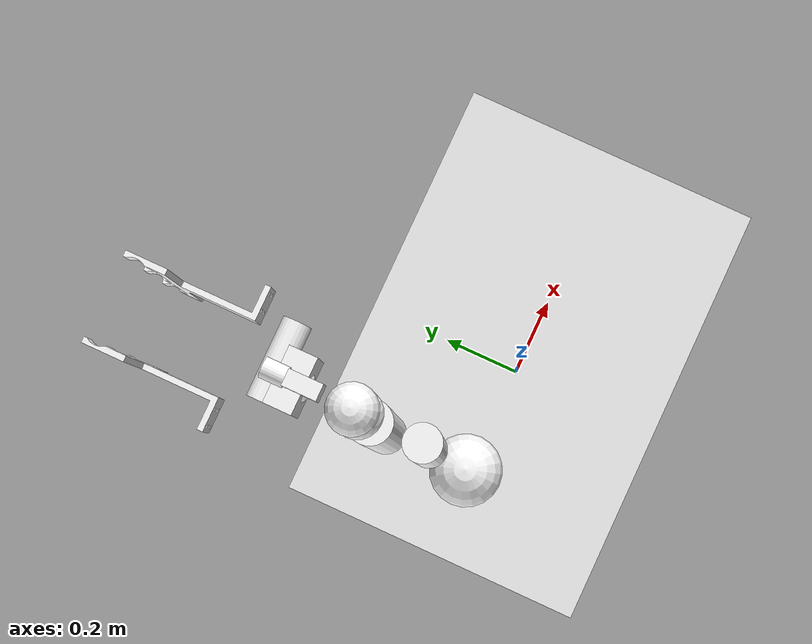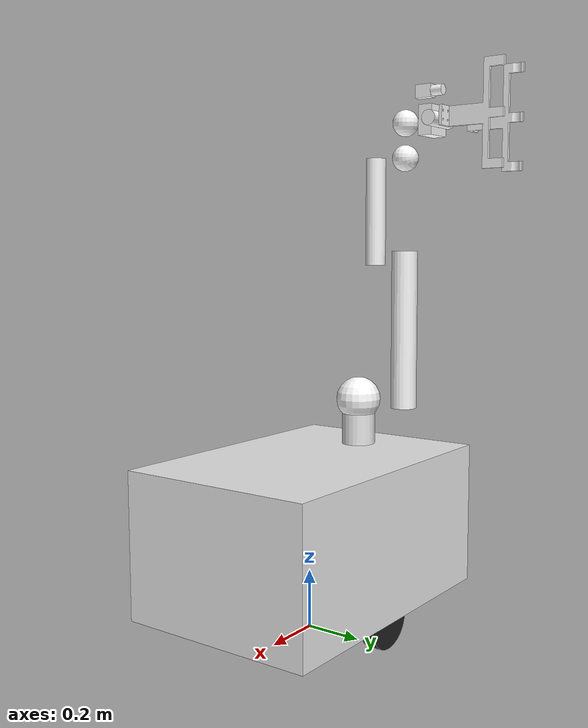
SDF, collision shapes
<sdf version='1.12'>
  <model name='seer_aubo_composite'>
    <link name='base_footprint'>
      <inertial>
        <pose>-0.0067535289950691026 -3.6025001736231799e-05 0.15985842516841439 0 0 0</pose>
        <mass>115.19199999999999</mass>
        <inertia>
          <ixx>3.7624900256016338</ixx>
          <ixy>-0.058218476231116492</ixy>
          <ixz>0.35718445016870021</ixz>
          <iyy>7.7892711615759591</iyy>
          <iyz>0.0019862839370155148</iyz>
          <izz>8.7376881246157811</izz>
        </inertia>
      </inertial>
      <collision name='base_footprint_fixed_joint_lump__base_link_collision'>
        <pose>0 0 0.34999999999999998 0 0 0</pose>
        <geometry>
          <box>
            <size>1 0.69999999999999996 0.5</size>
          </box>
        </geometry>
        <surface>
          <contact>
            <ode/>
          </contact>
          <friction>
            <ode/>
          </friction>
        </surface>
      </collision>
      <collision name='base_footprint_fixed_joint_lump__aubo_base_link_collision_1'>
        <pose>-0.29999999999999999 0 0.68149999999999999 0 0 3.1415926535897931</pose>
        <geometry>
          <cylinder>
            <length>0.16300000000000001</length>
            <radius>0.059999999999999998</radius>
          </cylinder>
        </geometry>
      </collision>
      <collision name='base_footprint_fixed_joint_lump__back_lidar_link_collision_2'>
        <pose>-0.38 -0.25 0.20000000000000001 0 0 0</pose>
        <geometry>
          <cylinder>
            <length>0.080000000000000002</length>
            <radius>0.050000000000000003</radius>
          </cylinder>
        </geometry>
        <surface>
          <contact>
            <ode/>
          </contact>
          <friction>
            <ode/>
          </friction>
        </surface>
      </collision>
      <collision name='base_footprint_fixed_joint_lump__front_caster_collision_3'>
        <pose>0.29999999999999999 0 0.095000000000000001 0 0 0</pose>
        <geometry>
          <sphere>
            <radius>0.095000000000000001</radius>
          </sphere>
        </geometry>
        <surface>
          <contact>
            <ode/>
          </contact>
          <friction>
            <ode>
              <mu>0</mu>
              <mu2>0</mu2>
            </ode>
          </friction>
        </surface>
      </collision>
      <collision name='base_footprint_fixed_joint_lump__front_lidar_link_collision_4'>
        <pose>0.38 0.25 0.20000000000000001 0 0 0</pose>
        <geometry>
          <cylinder>
            <length>0.080000000000000002</length>
            <radius>0.050000000000000003</radius>
          </cylinder>
        </geometry>
        <surface>
          <contact>
            <ode/>
          </contact>
          <friction>
            <ode/>
          </friction>
        </surface>
      </collision>
      <collision name='base_footprint_fixed_joint_lump__rear_caster_collision_5'>
        <pose>-0.29999999999999999 0 0.095000000000000001 0 0 0</pose>
        <geometry>
          <sphere>
            <radius>0.095000000000000001</radius>
          </sphere>
        </geometry>
        <surface>
          <contact>
            <ode/>
          </contact>
          <friction>
            <ode>
              <mu>0</mu>
              <mu2>0</mu2>
            </ode>
          </friction>
        </surface>
      </collision>
      <visual name='base_footprint_fixed_joint_lump__base_link_visual'>
        <pose>0 0 0.26000000000000001 0 0 3.1415926535897931</pose>
        <geometry>
          <mesh>
            <scale>0.10000000000000001 0.10000000000000001 0.10000000000000001</scale>
            <uri>model://seer_description/meshes/robot_body.stl</uri>
          </mesh>
        </geometry>
        <material>
          <script>
            <name>Gazebo/White</name>
            <uri>file://media/materials/scripts/gazebo.material</uri>
          </script>
          <diffuse>1 0.712499976 1 1</diffuse>
          <ambient>1 0.712499976 1 1</ambient>
        </material>
      </visual>
      <visual name='base_footprint_fixed_joint_lump__aubo_base_link_visual_1'>
        <pose>-0.29999999999999999 0 0.59999999999999998 0 0 3.1415926535897931</pose>
        <geometry>
          <mesh>
            <scale>1 1 1</scale>
            <uri>model://seer_description/meshes/aubo_i16H/visual/link0.DAE</uri>
          </mesh>
        </geometry>
        <material>
          <diffuse>1 1 1 1</diffuse>
          <ambient>1 1 1 1</ambient>
        </material>
      </visual>
      <visual name='base_footprint_fixed_joint_lump__back_lidar_link_visual_2'>
        <pose>-0.38 -0.25 0.20000000000000001 0 0 0</pose>
        <geometry>
          <mesh>
            <scale>0.10000000000000001 0.10000000000000001 0.10000000000000001</scale>
            <uri>model://seer_description/meshes/lidar.stl</uri>
          </mesh>
        </geometry>
        <material>
          <diffuse>0.625 0.625 0.625 1</diffuse>
          <ambient>0.625 0.625 0.625 1</ambient>
        </material>
      </visual>
      <visual name='base_footprint_fixed_joint_lump__front_lidar_link_visual_3'>
        <pose>0.38 0.25 0.20000000000000001 0 0 0</pose>
        <geometry>
          <mesh>
            <scale>0.10000000000000001 0.10000000000000001 0.10000000000000001</scale>
            <uri>model://seer_description/meshes/lidar.stl</uri>
          </mesh>
        </geometry>
        <material>
          <diffuse>0.625 0.625 0.625 1</diffuse>
          <ambient>0.625 0.625 0.625 1</ambient>
        </material>
      </visual>
      <sensor name='back_lidar_sensor' type='gpu_lidar'>
        <topic>/lidar_back</topic>
        <update_rate>10</update_rate>
        <ray>
          <scan>
            <horizontal>
              <samples>360</samples>
              <resolution>1</resolution>
              <min_angle>-3.1415899999999999</min_angle>
              <max_angle>3.1415899999999999</max_angle>
            </horizontal>
            <vertical>
              <samples>16</samples>
              <resolution>1</resolution>
              <min_angle>-0.26179999999999998</min_angle>
              <max_angle>0.26179999999999998</max_angle>
            </vertical>
          </scan>
          <range>
            <min>0.20000000000000001</min>
            <max>30</max>
            <resolution>0.01</resolution>
          </range>
        </ray>
        <always_on>true</always_on>
        <visualize>true</visualize>
        <pose>-0.38 -0.25 0.20000000000000001 0 0 0</pose>
        <gz_frame_id>back_lidar_link</gz_frame_id>
      </sensor>
      <sensor name='front_lidar_sensor' type='gpu_lidar'>
        <topic>/lidar_front</topic>
        <update_rate>10</update_rate>
        <ray>
          <scan>
            <horizontal>
              <samples>360</samples>
              <resolution>1</resolution>
              <min_angle>-3.1415899999999999</min_angle>
              <max_angle>3.1415899999999999</max_angle>
            </horizontal>
            <vertical>
              <samples>16</samples>
              <resolution>1</resolution>
              <min_angle>-0.26179999999999998</min_angle>
              <max_angle>0.26179999999999998</max_angle>
            </vertical>
          </scan>
          <range>
            <min>0.20000000000000001</min>
            <max>30</max>
            <resolution>0.01</resolution>
          </range>
        </ray>
        <always_on>true</always_on>
        <visualize>true</visualize>
        <pose>0.38 0.25 0.20000000000000001 0 0 0</pose>
        <gz_frame_id>front_lidar_link</gz_frame_id>
      </sensor>
    </link>
    <joint name='shoulder_joint' type='revolute'>
      <pose relative_to='base_footprint'>-0.29999999999999999 0 0.76300000000000001 -8.7138e-17 -4.3533999999999989e-32 -2.4492935982947059e-16</pose>
      <parent>base_footprint</parent>
      <child>shoulder_Link</child>
      <axis>
        <xyz>0 0 1</xyz>
        <limit>
          <lower>-6.2831853071795862</lower>
          <upper>6.2831853071795862</upper>
          <effort>267</effort>
          <velocity>3.106686068549906</velocity>
        </limit>
        <dynamics>
          <spring_reference>0</spring_reference>
          <spring_stiffness>0</spring_stiffness>
        </dynamics>
      </axis>
    </joint>
    <link name='shoulder_Link'>
      <pose relative_to='shoulder_joint'>0 0 0 0 0 0</pose>
      <inertial>
        <pose>-3.9999999999999998e-06 0.0051120000000000002 -0.026275 0 0 0</pose>
        <mass>10.180139</mass>
        <inertia>
          <ixx>0.043326000000000003</ixx>
          <ixy>3.0000000000000001e-06</ixy>
          <ixz>3.0000000000000001e-06</ixz>
          <iyy>0.042233</iyy>
          <iyz>-0.0017669999999999999</iyz>
          <izz>0.029902000000000001</izz>
        </inertia>
      </inertial>
      <collision name='shoulder_Link_collision'>
        <pose>0 0 0 0 0 0</pose>
        <geometry>
          <sphere>
            <radius>0.080000000000000002</radius>
          </sphere>
        </geometry>
      </collision>
      <visual name='shoulder_Link_visual'>
        <pose>0 0 0 0 0 0</pose>
        <geometry>
          <mesh>
            <scale>1 1 1</scale>
            <uri>model://seer_description/meshes/aubo_i16H/visual/link1.DAE</uri>
          </mesh>
        </geometry>
        <material>
          <diffuse>1 1 1 1</diffuse>
          <ambient>1 1 1 1</ambient>
        </material>
      </visual>
    </link>
    <joint name='upperArm_joint' type='revolute'>
      <pose relative_to='shoulder_Link'>0 0.191 0 -1.5707963267948957 -1.5707963267948966 0</pose>
      <parent>shoulder_Link</parent>
      <child>upperArm_Link</child>
      <axis>
        <xyz>0 0 1</xyz>
        <limit>
          <lower>-6.2831853071795862</lower>
          <upper>6.2831853071795862</upper>
          <effort>267</effort>
          <velocity>3.106686068549906</velocity>
        </limit>
        <dynamics>
          <spring_reference>0</spring_reference>
          <spring_stiffness>0</spring_stiffness>
        </dynamics>
      </axis>
    </joint>
    <link name='upperArm_Link'>
      <pose relative_to='upperArm_joint'>0 0 0 0 0 0</pose>
      <inertial>
        <pose>0.170602 0 -0.013024000000000001 0 0 0</pose>
        <mass>17.664059999999999</mass>
        <inertia>
          <ixx>0.063520999999999994</ixx>
          <ixy>2.0000000000000002e-05</ixy>
          <ixz>-0.024888</ixz>
          <iyy>0.84752799999999995</iyy>
          <iyz>5.0000000000000004e-06</iyz>
          <izz>0.828847</izz>
        </inertia>
      </inertial>
      <collision name='upperArm_Link_collision'>
        <pose>0.26000000000000001 0 0 0 1.5707963267948966 0</pose>
        <geometry>
          <cylinder>
            <length>0.55000000000000004</length>
            <radius>0.044999999999999998</radius>
          </cylinder>
        </geometry>
      </collision>
      <visual name='upperArm_Link_visual'>
        <pose>0 0 0 0 0 0</pose>
        <geometry>
          <mesh>
            <scale>1 1 1</scale>
            <uri>model://seer_description/meshes/aubo_i16H/visual/link2.DAE</uri>
          </mesh>
        </geometry>
        <material>
          <diffuse>1 1 1 1</diffuse>
          <ambient>1 1 1 1</ambient>
        </material>
      </visual>
    </link>
    <joint name='foreArm_joint' type='revolute'>
      <pose relative_to='upperArm_Link'>0.47999999999999998 0 0 -3.1415926535897931 -4.5954000000000001e-17 -8.4327999999999997e-17</pose>
      <parent>upperArm_Link</parent>
      <child>foreArm_Link</child>
      <axis>
        <xyz>0 0 1</xyz>
        <limit>
          <lower>-2.8099800957108707</lower>
          <upper>2.8099800957108707</upper>
          <effort>133</effort>
          <velocity>4.6600291028248604</velocity>
        </limit>
        <dynamics>
          <spring_reference>0</spring_reference>
          <spring_stiffness>0</spring_stiffness>
        </dynamics>
      </axis>
    </joint>
    <link name='foreArm_Link'>
      <pose relative_to='foreArm_joint'>0 0 0 0 0 0</pose>
      <inertial>
        <pose>0.269208 -2.1999999999999999e-05 0.10646700000000001 0 0 0</pose>
        <mass>3.9263539999999999</mass>
        <inertia>
          <ixx>0.0060070000000000002</ixx>
          <ixy>9.0000000000000002e-06</ixy>
          <ixz>0.0019910000000000001</ixz>
          <iyy>0.083779999999999993</iyy>
          <iyz>5.0000000000000004e-06</iyz>
          <izz>0.082433000000000006</izz>
        </inertia>
      </inertial>
      <collision name='foreArm_Link_collision'>
        <pose>0.19 0 0.12 0 1.5707963267948966 0</pose>
        <geometry>
          <cylinder>
            <length>0.37</length>
            <radius>0.035000000000000003</radius>
          </cylinder>
        </geometry>
      </collision>
      <visual name='foreArm_Link_visual'>
        <pose>0 0 0 0 0 0</pose>
        <geometry>
          <mesh>
            <scale>1 1 1</scale>
            <uri>model://seer_description/meshes/aubo_i16H/visual/link3.DAE</uri>
          </mesh>
        </geometry>
        <material>
          <diffuse>1 1 1 1</diffuse>
          <ambient>1 1 1 1</ambient>
        </material>
      </visual>
    </link>
    <joint name='wrist1_joint' type='revolute'>
      <pose relative_to='foreArm_Link'>0.37 0 0 3.1415926535897931 -1.4293999999999997e-15 1.5707963267948959</pose>
      <parent>foreArm_Link</parent>
      <child>wrist1_Link</child>
      <axis>
        <xyz>0 0 1</xyz>
        <limit>
          <lower>-6.2831853071795862</lower>
          <upper>6.2831853071795862</upper>
          <effort>49</effort>
          <velocity>4.1364303272265612</velocity>
        </limit>
        <dynamics>
          <spring_reference>0</spring_reference>
          <spring_stiffness>0</spring_stiffness>
        </dynamics>
      </axis>
    </joint>
    <link name='wrist1_Link'>
      <pose relative_to='wrist1_joint'>0 0 0 0 0 0</pose>
      <inertial>
        <pose>3.6000000000000001e-05 0.015610000000000001 -0.001526 0 0 0</pose>
        <mass>2.3707410000000002</mass>
        <inertia>
          <ixx>0.0036719999999999999</ixx>
          <ixy>6.0000000000000002e-06</ixy>
          <ixz>-9.9999999999999995e-07</ixz>
          <iyy>0.0021900000000000001</iyy>
          <iyz>-8.0000000000000007e-05</iyz>
          <izz>0.0036210000000000001</izz>
        </inertia>
      </inertial>
      <collision name='wrist1_Link_collision'>
        <pose>0 0 0 0 0 0</pose>
        <geometry>
          <sphere>
            <radius>0.044999999999999998</radius>
          </sphere>
        </geometry>
      </collision>
      <visual name='wrist1_Link_visual'>
        <pose>0 0 0 0 0 0</pose>
        <geometry>
          <mesh>
            <scale>1 1 1</scale>
            <uri>model://seer_description/meshes/aubo_i16H/visual/link4.DAE</uri>
          </mesh>
        </geometry>
        <material>
          <diffuse>1 1 1 1</diffuse>
          <ambient>1 1 1 1</ambient>
        </material>
      </visual>
    </link>
    <joint name='wrist2_joint' type='revolute'>
      <pose relative_to='wrist1_Link'>0 0.11749999999999999 0 -1.5707963267948959 -7.0776999999999986e-16 -7.4100999999999999e-16</pose>
      <parent>wrist1_Link</parent>
      <child>wrist2_Link</child>
      <axis>
        <xyz>0 0 1</xyz>
        <limit>
          <lower>-6.2831853071795862</lower>
          <upper>6.2831853071795862</upper>
          <effort>49</effort>
          <velocity>4.1364303272265612</velocity>
        </limit>
        <dynamics>
          <spring_reference>0</spring_reference>
          <spring_stiffness>0</spring_stiffness>
        </dynamics>
      </axis>
    </joint>
    <link name='wrist2_Link'>
      <pose relative_to='wrist2_joint'>0 0 0 0 0 0</pose>
      <inertial>
        <pose>-3.6000000000000001e-05 -0.015610000000000001 -0.001526 0 0 0</pose>
        <mass>2.3707410000000002</mass>
        <inertia>
          <ixx>0.0036719999999999999</ixx>
          <ixy>6.0000000000000002e-06</ixy>
          <ixz>9.9999999999999995e-07</ixz>
          <iyy>0.0021900000000000001</iyy>
          <iyz>8.0000000000000007e-05</iyz>
          <izz>0.0036210000000000001</izz>
        </inertia>
      </inertial>
      <collision name='wrist2_Link_collision'>
        <pose>0 0 0 0 0 0</pose>
        <geometry>
          <sphere>
            <radius>0.044999999999999998</radius>
          </sphere>
        </geometry>
      </collision>
      <visual name='wrist2_Link_visual'>
        <pose>0 0 0 0 0 0</pose>
        <geometry>
          <mesh>
            <scale>1 1 1</scale>
            <uri>model://seer_description/meshes/aubo_i16H/visual/link5.DAE</uri>
          </mesh>
        </geometry>
        <material>
          <diffuse>1 1 1 1</diffuse>
          <ambient>1 1 1 1</ambient>
        </material>
      </visual>
    </link>
    <joint name='wrist3_joint' type='revolute'>
      <pose relative_to='wrist2_Link'>0 -0.10349999999999999 0 1.5707963267948959 -4.9303806576313238e-32 6.7282999999999993e-16</pose>
      <parent>wrist2_Link</parent>
      <child>wrist3_Link</child>
      <axis>
        <xyz>0 0 1</xyz>
        <limit>
          <lower>-6.2831853071795862</lower>
          <upper>6.2831853071795862</upper>
          <effort>49</effort>
          <velocity>4.1364303272265612</velocity>
        </limit>
        <dynamics>
          <spring_reference>0</spring_reference>
          <spring_stiffness>0</spring_stiffness>
        </dynamics>
      </axis>
    </joint>
    <link name='wrist3_Link'>
      <pose relative_to='wrist3_joint'>0 0 0 0 0 0</pose>
      <inertial>
        <pose>-0.0085611950923694356 0.016821458109718961 0.0094999531116883272 0 0 0</pose>
        <mass>1.1526540000000001</mass>
        <inertia>
          <ixx>0.0055131742922067857</ixx>
          <ixy>-0.0001660411346399149</ixy>
          <ixz>0.00025850238815371812</ixz>
          <iyy>0.0040128845306545433</iyy>
          <iyz>0.00039902047345929888</iyz>
          <izz>0.0050324583901318878</izz>
        </inertia>
      </inertial>
      <collision name='wrist3_Link_collision'>
        <pose>0 0 0 0 0 0</pose>
        <geometry>
          <sphere>
            <radius>0.035000000000000003</radius>
          </sphere>
        </geometry>
      </collision>
      <collision name='wrist3_Link_fixed_joint_lump__gripper_adapter_link_collision_1'>
        <pose>0 0 0 3.1415926535897931 1.224646799147353e-16 3.1415926535897931</pose>
        <geometry>
          <box>
            <size>0.10000000000000001 0.10000000000000001 0.050000000000000003</size>
          </box>
        </geometry>
      </collision>
      <collision name='wrist3_Link_fixed_joint_lump__gripper_motor_link_collision_2'>
        <pose>-0.02 0 0.035000000000000003 1.5707963267948959 -5.5511151231257827e-17 1.5707963267948959</pose>
        <geometry>
          <cylinder>
            <length>0.14000000000000001</length>
            <radius>0.025000000000000001</radius>
          </cylinder>
        </geometry>
      </collision>
      <collision name='wrist3_Link_fixed_joint_lump__camera_link_collision_3'>
        <pose>0 0.10000000000000001 -0.029499999999999998 0 0 3.1415926535897931</pose>
        <geometry>
          <box>
            <size>0.029000000000000001 0.043999999999999997 0.058999999999999997</size>
          </box>
        </geometry>
      </collision>
      <collision name='wrist3_Link_fixed_joint_lump__camera_link_collision_4'>
        <pose>0 0.10000000000000001 0.02 0 0 3.1415926535897931</pose>
        <geometry>
          <cylinder>
            <length>0.040000000000000001</length>
            <radius>0.017500000000000002</radius>
          </cylinder>
        </geometry>
      </collision>
      <visual name='wrist3_Link_visual'>
        <pose>0 0 0 0 0 0</pose>
        <geometry>
          <mesh>
            <scale>1 1 1</scale>
            <uri>model://seer_description/meshes/aubo_i16H/visual/link6.DAE</uri>
          </mesh>
        </geometry>
        <material>
          <diffuse>1 1 1 1</diffuse>
          <ambient>1 1 1 1</ambient>
        </material>
      </visual>
      <visual name='wrist3_Link_fixed_joint_lump__gripper_adapter_link_visual_1'>
        <pose>0 0 0 3.1415926535897931 1.224646799147353e-16 3.1415926535897931</pose>
        <geometry>
          <mesh>
            <scale>1 1 1</scale>
            <uri>model://seer_description/meshes/adapter.stl</uri>
          </mesh>
        </geometry>
        <material>
          <diffuse>0.37500003 0.37500003 0.37500003 1</diffuse>
          <ambient>0.37500003 0.37500003 0.37500003 1</ambient>
        </material>
      </visual>
      <visual name='wrist3_Link_fixed_joint_lump__gripper_motor_link_visual_2'>
        <pose>-0.02 0 0.035000000000000003 1.5707963267948959 -5.5511151231257827e-17 1.5707963267948959</pose>
        <geometry>
          <mesh>
            <scale>1 1 1</scale>
            <uri>model://seer_description/meshes/motor.stl</uri>
          </mesh>
        </geometry>
        <material>
          <diffuse>0.125 0.125 0.125 1</diffuse>
          <ambient>0.125 0.125 0.125 1</ambient>
        </material>
      </visual>
      <visual name='wrist3_Link_fixed_joint_lump__camera_link_visual_3'>
        <pose>0 0.10000000000000001 -0.029499999999999998 0 0 3.1415926535897931</pose>
        <geometry>
          <box>
            <size>0.029000000000000001 0.043999999999999997 0.058999999999999997</size>
          </box>
        </geometry>
        <material>
          <diffuse>0.199999988 0.225000009 0.262499988 1</diffuse>
          <ambient>0.199999988 0.225000009 0.262499988 1</ambient>
        </material>
      </visual>
      <visual name='wrist3_Link_fixed_joint_lump__camera_link_visual_4'>
        <pose>0 0.10000000000000001 0.02 0 0 3.1415926535897931</pose>
        <geometry>
          <cylinder>
            <length>0.040000000000000001</length>
            <radius>0.017500000000000002</radius>
          </cylinder>
        </geometry>
        <material>
          <diffuse>0.0437499993 0.0437499993 0.0437499993 1</diffuse>
          <ambient>0.0437499993 0.0437499993 0.0437499993 1</ambient>
        </material>
      </visual>
      <sensor name='mv_ch100_60um' type='camera'>
        <always_on>true</always_on>
        <update_rate>36</update_rate>
        <topic>/camera/image_raw</topic>
        <camera>
          <horizontal_fov>1.0642870019972548</horizontal_fov>
          <image>
            <width>4096</width>
            <height>2460</height>
            <format>L8</format>
          </image>
          <clip>
            <near>0.01</near>
            <far>100</far>
          </clip>
        </camera>
        <pose>0 0.10000000000000001 0.040000000000000001 -3.1415926535746808 -1.5707926536057681 1.5707973463869789</pose>
        <gz_frame_id>camera_optical_frame</gz_frame_id>
      </sensor>
    </link>
    <joint name='gripper1_joint' type='prismatic'>
      <pose relative_to='wrist3_Link'>-0.090000000000000024 0 0.13500000000000001 3.1415926535897931 -1.2325951644078309e-32 1.5707963267948959</pose>
      <parent>wrist3_Link</parent>
      <child>gripper1_link</child>
      <axis>
        <xyz>0 1 0</xyz>
        <limit>
          <lower>0</lower>
          <upper>0.040000000000000001</upper>
          <effort>50</effort>
          <velocity>0.10000000000000001</velocity>
        </limit>
        <dynamics>
          <spring_reference>0</spring_reference>
          <spring_stiffness>0</spring_stiffness>
        </dynamics>
      </axis>
    </joint>
    <link name='gripper1_link'>
      <pose relative_to='gripper1_joint'>0 0 0 0 0 0</pose>
      <inertial>
        <pose>0 0 0 0 0 0</pose>
        <mass>0.29999999999999999</mass>
        <inertia>
          <ixx>0.001</ixx>
          <ixy>0</ixy>
          <ixz>0</ixz>
          <iyy>0.001</iyy>
          <iyz>0</iyz>
          <izz>0.001</izz>
        </inertia>
      </inertial>
      <collision name='gripper1_link_collision'>
        <pose>0 0 0 0 0 0</pose>
        <geometry>
          <mesh>
            <scale>1 1 1</scale>
            <uri>model://seer_description/meshes/gripper_stick.stl</uri>
          </mesh>
        </geometry>
      </collision>
      <visual name='gripper1_link_visual'>
        <pose>0 0 0 0 0 0</pose>
        <geometry>
          <mesh>
            <scale>1 1 1</scale>
            <uri>model://seer_description/meshes/gripper_stick.stl</uri>
          </mesh>
        </geometry>
        <material>
          <diffuse>1 1 1 1</diffuse>
          <ambient>1 1 1 1</ambient>
        </material>
      </visual>
    </link>
    <joint name='gripper2_joint' type='prismatic'>
      <pose relative_to='wrist3_Link'>0.099999999999999964 -2.775557561562891e-17 0.13500000000000001 3.1415926535897931 2.4651903288156619e-32 -1.570796326794897</pose>
      <parent>wrist3_Link</parent>
      <child>gripper2_link</child>
      <axis>
        <xyz>0 1 0</xyz>
        <limit>
          <lower>0</lower>
          <upper>0.040000000000000001</upper>
          <effort>50</effort>
          <velocity>0.10000000000000001</velocity>
        </limit>
        <dynamics>
          <spring_reference>0</spring_reference>
          <spring_stiffness>0</spring_stiffness>
        </dynamics>
      </axis>
    </joint>
    <link name='gripper2_link'>
      <pose relative_to='gripper2_joint'>0 0 0 0 0 0</pose>
      <inertial>
        <pose>0 0 0 0 0 0</pose>
        <mass>0.29999999999999999</mass>
        <inertia>
          <ixx>0.001</ixx>
          <ixy>0</ixy>
          <ixz>0</ixz>
          <iyy>0.001</iyy>
          <iyz>0</iyz>
          <izz>0.001</izz>
        </inertia>
      </inertial>
      <collision name='gripper2_link_collision'>
        <pose>0 0 0 0 0 0</pose>
        <geometry>
          <mesh>
            <scale>1 1 1</scale>
            <uri>model://seer_description/meshes/gripper_stick.stl</uri>
          </mesh>
        </geometry>
      </collision>
      <visual name='gripper2_link_visual'>
        <pose>0 0 0 0 0 0</pose>
        <geometry>
          <mesh>
            <scale>1 1 1</scale>
            <uri>model://seer_description/meshes/gripper_stick.stl</uri>
          </mesh>
        </geometry>
        <material>
          <diffuse>1 1 1 1</diffuse>
          <ambient>1 1 1 1</ambient>
        </material>
      </visual>
    </link>
    <joint name='left_wheel_joint' type='revolute'>
      <pose relative_to='base_footprint'>0 0.29999999999999999 0.10000000000000001 0 0 0</pose>
      <parent>base_footprint</parent>
      <child>left_wheel_link</child>
      <axis>
        <xyz>0 1 0</xyz>
        <limit>
          <lower>-inf</lower>
          <upper>inf</upper>
        </limit>
        <dynamics>
          <spring_reference>0</spring_reference>
          <spring_stiffness>0</spring_stiffness>
        </dynamics>
      </axis>
    </joint>
    <link name='left_wheel_link'>
      <pose relative_to='left_wheel_joint'>0 0 0 0 0 0</pose>
      <inertial>
        <pose>0 0 0 1.5707963267948959 0 0</pose>
        <mass>6</mass>
        <inertia>
          <ixx>0.01</ixx>
          <ixy>0</ixy>
          <ixz>0</ixz>
          <iyy>0.01</iyy>
          <iyz>0</iyz>
          <izz>0.01</izz>
        </inertia>
      </inertial>
      <collision name='left_wheel_link_collision'>
        <pose>0 0 0 1.5707963267948959 0 0</pose>
        <geometry>
          <cylinder>
            <length>0.050000000000000003</length>
            <radius>0.10000000000000001</radius>
          </cylinder>
        </geometry>
        <surface>
          <contact>
            <ode/>
          </contact>
          <friction>
            <ode>
              <mu>1</mu>
              <mu2>1</mu2>
            </ode>
          </friction>
        </surface>
      </collision>
      <visual name='left_wheel_link_visual'>
        <pose>0 0 0 0 0 0</pose>
        <geometry>
          <mesh>
            <scale>0.10000000000000001 0.10000000000000001 0.10000000000000001</scale>
            <uri>model://seer_description/meshes/left_wheel.stl</uri>
          </mesh>
        </geometry>
        <material>
          <script>
            <name>Gazebo/Black</name>
            <uri>file://media/materials/scripts/gazebo.material</uri>
          </script>
          <diffuse>0.125 0.125 0.125 1</diffuse>
          <ambient>0.125 0.125 0.125 1</ambient>
        </material>
      </visual>
    </link>
    <joint name='right_wheel_joint' type='revolute'>
      <pose relative_to='base_footprint'>0 -0.29999999999999999 0.10000000000000001 0 0 0</pose>
      <parent>base_footprint</parent>
      <child>right_wheel_link</child>
      <axis>
        <xyz>0 1 0</xyz>
        <limit>
          <lower>-inf</lower>
          <upper>inf</upper>
        </limit>
        <dynamics>
          <spring_reference>0</spring_reference>
          <spring_stiffness>0</spring_stiffness>
        </dynamics>
      </axis>
    </joint>
    <link name='right_wheel_link'>
      <pose relative_to='right_wheel_joint'>0 0 0 0 0 0</pose>
      <inertial>
        <pose>0 0 0 1.5707963267948959 0 0</pose>
        <mass>6</mass>
        <inertia>
          <ixx>0.01</ixx>
          <ixy>0</ixy>
          <ixz>0</ixz>
          <iyy>0.01</iyy>
          <iyz>0</iyz>
          <izz>0.01</izz>
        </inertia>
      </inertial>
      <collision name='right_wheel_link_collision'>
        <pose>0 0 0 1.5707963267948959 0 0</pose>
        <geometry>
          <cylinder>
            <length>0.050000000000000003</length>
            <radius>0.10000000000000001</radius>
          </cylinder>
        </geometry>
        <surface>
          <contact>
            <ode/>
          </contact>
          <friction>
            <ode>
              <mu>1</mu>
              <mu2>1</mu2>
            </ode>
          </friction>
        </surface>
      </collision>
      <visual name='right_wheel_link_visual'>
        <pose>0 0 0 0 0 0</pose>
        <geometry>
          <mesh>
            <scale>0.10000000000000001 0.10000000000000001 0.10000000000000001</scale>
            <uri>model://seer_description/meshes/right_wheel.stl</uri>
          </mesh>
        </geometry>
        <material>
          <script>
            <name>Gazebo/Black</name>
            <uri>file://media/materials/scripts/gazebo.material</uri>
          </script>
          <diffuse>0.125 0.125 0.125 1</diffuse>
          <ambient>0.125 0.125 0.125 1</ambient>
        </material>
      </visual>
    </link>
    <plugin name='gz::sim::systems::DiffDrive' filename='gz-sim-diff-drive-system'>
      <left_joint>left_wheel_joint</left_joint>
      <right_joint>right_wheel_joint</right_joint>
      <wheel_separation>0.6</wheel_separation>
      <wheel_radius>0.1</wheel_radius>
      <max_linear_acceleration>1.0</max_linear_acceleration>
      <max_angular_acceleration>1.0</max_angular_acceleration>
      <max_linear_velocity>1.5</max_linear_velocity>
      <max_angular_velocity>0.5</max_angular_velocity>
      <topic>cmd_vel</topic>
      <odom_topic>odom</odom_topic>
      <frame_id>odom</frame_id>
      <child_frame_id>base_footprint</child_frame_id>
      <odom_publisher_frequency>30</odom_publisher_frequency>
    </plugin>
    <plugin name='gz::sim::systems::JointStatePublisher' filename='gz-sim-joint-state-publisher-system'>
      <topic>joint_states</topic>
      <joint_name>left_wheel_joint</joint_name>
      <joint_name>right_wheel_joint</joint_name>
    </plugin>
    <plugin name='gz::sim::systems::Sensors' filename='gz-sim-sensors-system'>
      <render_engine>ogre2</render_engine>
    </plugin>
    <plugin name='gz_ros2_control::GazeboSimROS2ControlPlugin' filename='gz_ros2_control-system'>
      <parameters>$(find seer_description)/config/aubo_controllers_with_gripper.yaml</parameters>
    </plugin>
    <frame name='arm_mount_joint' attached_to='base_link'>
      <pose>-0.29999999999999999 0 0.59999999999999998 0 0 3.1415926535897931</pose>
    </frame>
    <frame name='aubo_base_link' attached_to='arm_mount_joint'>
      <pose>0 0 0 0 0 0</pose>
    </frame>
    <frame name='motor_mount_joint' attached_to='gripper_adapter_link'>
      <pose>-0.02 0 0.035000000000000003 1.5707963267948959 -5.5511151231257827e-17 1.5707963267948959</pose>
    </frame>
    <frame name='gripper_motor_link' attached_to='motor_mount_joint'>
      <pose>0 0 0 0 0 0</pose>
    </frame>
    <frame name='adapter_mount_joint' attached_to='wrist3_Link'>
      <pose>0 0 0 0 0 0</pose>
    </frame>
    <frame name='gripper_adapter_link' attached_to='adapter_mount_joint'>
      <pose>0 0 0 0 0 0</pose>
    </frame>
    <frame name='camera_optical_joint' attached_to='camera_link'>
      <pose>0 0 0.040000000000000001 0 0 0</pose>
    </frame>
    <frame name='camera_optical_frame' attached_to='camera_optical_joint'>
      <pose>0 0 0 0 0 0</pose>
    </frame>
    <frame name='camera_joint' attached_to='wrist3_Link'>
      <pose>0 0.10000000000000001 0 0 0 3.1415926535897931</pose>
    </frame>
    <frame name='camera_link' attached_to='camera_joint'>
      <pose>0 0 0 0 0 0</pose>
    </frame>
    <frame name='back_lidar_joint' attached_to='base_link'>
      <pose>-0.38 -0.25 0.20000000000000001 0 0 0</pose>
    </frame>
    <frame name='back_lidar_link' attached_to='back_lidar_joint'>
      <pose>0 0 0 0 0 0</pose>
    </frame>
    <frame name='front_caster_joint' attached_to='base_link'>
      <pose>0.29999999999999999 0 0.095000000000000001 0 0 0</pose>
    </frame>
    <frame name='front_caster' attached_to='front_caster_joint'>
      <pose>0 0 0 0 0 0</pose>
    </frame>
    <frame name='front_lidar_joint' attached_to='base_link'>
      <pose>0.38 0.25 0.20000000000000001 0 0 0</pose>
    </frame>
    <frame name='front_lidar_link' attached_to='front_lidar_joint'>
      <pose>0 0 0 0 0 0</pose>
    </frame>
    <frame name='rear_caster_joint' attached_to='base_link'>
      <pose>-0.29999999999999999 0 0.095000000000000001 0 0 0</pose>
    </frame>
    <frame name='rear_caster' attached_to='rear_caster_joint'>
      <pose>0 0 0 0 0 0</pose>
    </frame>
    <frame name='base_joint' attached_to='base_footprint'>
      <pose>0 0 0 0 0 0</pose>
    </frame>
    <frame name='base_link' attached_to='base_joint'>
      <pose>0 0 0 0 0 0</pose>
    </frame>
  </model>
</sdf>
